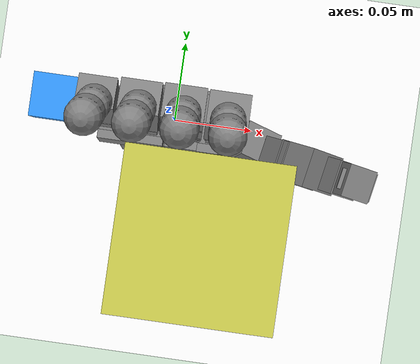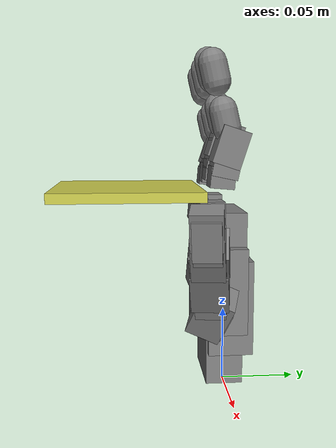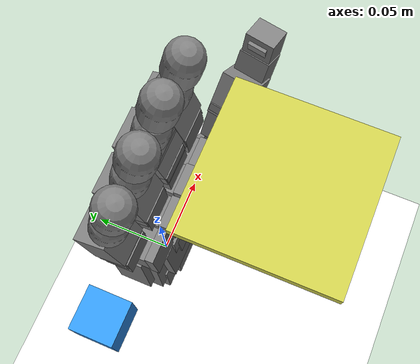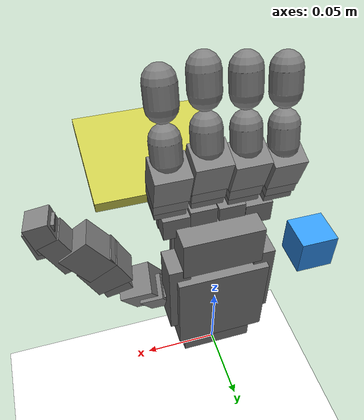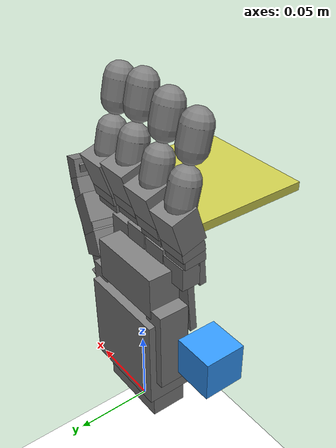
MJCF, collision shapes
<mujoco model="v2_scene_grasp_capsule_bottlepalm_cube">
  <size nconmax="80" />
  <include file="right_hand_v2_vertical_bottle_cube_eval.xml" />
  <include file="small_cube.xml" />

  <statistic center="-0.130 0 0.005" extent="0.5" meansize="0.01" />

  <visual>
    <headlight diffuse=".8 .8 .8" ambient=".2 .2 .2" specular="1 1 1" />
    <rgba force="1 0 0 1" />
    <global azimuth="120" elevation="-20" />
  </visual>

  <asset>
    <texture type="skybox" builtin="gradient" rgb1="1 1 1" rgb2="1 1 1" width="800" height="800" />
    <texture type="2d" name="groundplane" builtin="checker" mark="edge" rgb1="1 1 1" rgb2="1 1 1" markrgb="0 0 0" width="300" height="300" />
    <material name="groundplane" texture="groundplane" texuniform="true" texrepeat="5 5" reflectance="0" />
  </asset>

  <worldbody>
    <camera name="side" pos="-0.314 -0.181 0.249" xyaxes="0.5 -0.866 0 0.366 0.211 0.906" />
    <camera name="palm" pos="-0.376 0.0 0.217" xyaxes="0 -1 0 0.342 0 0.940" />
    <geom name="floor" pos="0 0 -0.25" size="0 0 0.01" type="plane" material="groundplane" contype="2" conaffinity="2" />
    <body name="cube_support" mocap="true" pos="0.025 -0.065 0.1348">
      <geom name="cube_support_geom" type="box" size="0.045 0.045 0.003" rgba="0.8 0.8 0.3 0.3" contype="4" conaffinity="0" />
    </body>
  </worldbody>

  <sensor>
    <framepos name="cube_position" objtype="body" objname="cube" />
    <framequat name="cube_orientation" objtype="body" objname="cube" />
    <framelinvel name="cube_linvel" objtype="body" objname="cube" />
    <frameangvel name="cube_angvel" objtype="body" objname="cube" />
    <framepos name="palm_position" objtype="site" objname="grasp_site" />
    <framepos name="th_tip_position" objtype="site" objname="th_tip" reftype="site" refname="grasp_site" />
    <framepos name="if_tip_position" objtype="site" objname="if_tip" reftype="site" refname="grasp_site" />
    <framepos name="mf_tip_position" objtype="site" objname="mf_tip" reftype="site" refname="grasp_site" />
    <framepos name="rf_tip_position" objtype="site" objname="rf_tip" reftype="site" refname="grasp_site" />
    <framepos name="pf_tip_position" objtype="site" objname="pf_tip" reftype="site" refname="grasp_site" />
  </sensor>

  <keyframe>
    <key
        name="home"
        qpos="0.55 0.50875 0.55 0.50875 1.3963 1.2916 1.3963 1.2916 1.38 0.22 0.33 0.025 -0.065 0.1503 1 0 0 0"
        ctrl="1.38 0.33 0.55 0.55 1.4 1.4"
        mpos="0.025 -0.065 0.1348"
        mquat="1 0 0 0"
    />
  </keyframe>
</mujoco>

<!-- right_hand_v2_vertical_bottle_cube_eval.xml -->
<mujoco model="Lingxi_Hand_V2_Right">
  <compiler angle="radian" meshdir="/home/ll/SRTP/Aero-Hand/handinformation/URDF/右/qbr/meshes/" />
  <option timestep="0.01" integrator="Euler" iterations="20" ls_iterations="20">
    <flag eulerdamp="disable" />
  </option>
  <custom>
    <numeric data="80" name="max_contact_points" />
    <numeric data="50" name="max_geom_pairs" />
  </custom>
  <asset>
    <material name="black" rgba="0.2 0.2 0.2 1" />
    <material name="gray" rgba="0.5 0.5 0.5 1" />
    <material name="white" rgba="0.529 0.549 0.549 1" />
    <material name="rubber" rgba="0.3 0.3 0.3 1" />
    <mesh name="v2_palm" file="v2_base_link.STL" />
    <mesh name="v2_thumb_base" file="link1.STL" />
    <mesh name="v2_thumb_mid" file="link2.STL" />
    <mesh name="v2_thumb_tip" file="link3.STL" />
    <mesh name="v2_index_proximal" file="link4.STL" />
    <mesh name="v2_index_distal" file="link5.STL" />
    <mesh name="v2_middle_proximal" file="link6.STL" />
    <mesh name="v2_middle_distal" file="link7.STL" />
    <mesh name="v2_ring_proximal" file="link8.STL" />
    <mesh name="v2_ring_distal" file="link9.STL" />
    <mesh name="v2_pinky_proximal" file="link10.STL" />
    <mesh name="v2_pinky_distal" file="link11.STL" />
  </asset>
  <default>
    <default class="v2_hand">
      <site group="4" />
      <default class="visual">
        <geom group="2" type="mesh" contype="0" conaffinity="0" density="0" material="white" />
      </default>
      <joint damping="0.02" armature="0.001559127" frictionloss="0.02" />
      <position kp="3.0" />
      <default class="mcp">
        <joint range="0 1.3963" damping="0.1" />
        <position ctrlrange="0 1.40" />
      </default>
      <default class="pip">
        <joint range="0 1.2915" damping="0.05" />
      </default>
      <default class="thumb_cmc">
        <joint range="0 1.3788" damping="0.1" />
        <position ctrlrange="0 1.38" />
      </default>
      <!-- 拇指 flex 代理遵循 handinformation 中的两段弯曲：
           被动段约 30°，主动段约 45°。 -->
      <default class="thumb_flex">
        <joint range="0 0.5236" damping="0.05" />
      </default>
      <default class="thumb_mcp">
        <joint range="0 0.7854" damping="0.05" />
        <position ctrlrange="0 0.79" />
      </default>
    </default>
  </default>
  <contact>
    <exclude body1="palm" body2="right_index_proximal" />
    <exclude body1="palm" body2="right_middle_proximal" />
    <exclude body1="palm" body2="right_ring_proximal" />
    <exclude body1="palm" body2="right_pinky_proximal" />
    <exclude body1="palm" body2="right_thumb_base" />
    <exclude body1="palm" body2="right_thumb_mid" />
    <exclude body1="palm" body2="right_ring_distal" />
    <exclude body1="palm" body2="right_pinky_distal" />
    <exclude body1="v2_mount" body2="right_index_proximal" />
    <exclude body1="v2_mount" body2="right_middle_proximal" />
    <exclude body1="v2_mount" body2="right_ring_proximal" />
    <exclude body1="v2_mount" body2="right_pinky_proximal" />
    <exclude body1="v2_mount" body2="right_thumb_base" />
    <exclude body1="right_index_proximal" body2="right_index_distal" />
    <exclude body1="right_middle_proximal" body2="right_middle_distal" />
    <exclude body1="right_ring_proximal" body2="right_ring_distal" />
    <exclude body1="right_pinky_proximal" body2="right_pinky_distal" />
    <exclude body1="right_thumb_base" body2="right_thumb_mid" />
    <exclude body1="right_thumb_mid" body2="right_thumb_tip" />
    <exclude body1="right_index_proximal" body2="right_middle_proximal" />
    <exclude body1="right_index_distal" body2="right_middle_distal" />
    <exclude body1="right_middle_proximal" body2="right_ring_proximal" />
    <exclude body1="right_middle_distal" body2="right_ring_distal" />
    <exclude body1="right_ring_proximal" body2="right_pinky_proximal" />
    <exclude body1="right_ring_distal" body2="right_pinky_distal" />
    <exclude body1="right_index_proximal" body2="right_middle_distal" />
    <exclude body1="right_middle_proximal" body2="right_ring_distal" />
    <exclude body1="right_ring_proximal" body2="right_pinky_distal" />
    <exclude body1="right_middle_proximal" body2="right_index_distal" />
    <exclude body1="right_ring_proximal" body2="right_middle_distal" />
    <exclude body1="right_pinky_proximal" body2="right_ring_distal" />
  </contact>
  <worldbody>
    <body name="v2_mount" pos="0 0 0" euler="1.5708 0 0" childclass="v2_hand">
      <body name="palm" pos="0 0 0">
        <geom type="mesh" mesh="v2_palm" class="visual" />
        <geom name="palm_capsule_000" type="box" size="0.0300 0.0310 0.0145" pos="0.0000 0.0580 -0.0010" group="3" friction="1.95 0.014 0.0002" solref="0.008 1.1" solimp="0.95 0.995 0.0005" />
        <geom name="palm_capsule_001" type="box" size="0.0260 0.0140 0.0105" pos="0.0000 0.1060 -0.0010" group="3" friction="1.95 0.014 0.0002" solref="0.008 1.1" solimp="0.95 0.995 0.0005" />
        <geom name="palm_capsule_002" type="box" size="0.0245 0.0170 0.0120" pos="0.0000 0.0230 0.0025" group="3" friction="1.90 0.014 0.0002" solref="0.008 1.1" solimp="0.95 0.995 0.0005" />
        <geom name="palm_capsule_003" type="box" size="0.0070 0.0280 0.0100" pos="0.0280 0.0700 -0.0010" group="3" friction="1.95 0.014 0.0002" solref="0.008 1.1" solimp="0.95 0.995 0.0005" />
        <geom name="palm_capsule_004" type="box" size="0.0070 0.0280 0.0100" pos="-0.0280 0.0700 -0.0010" group="3" friction="1.95 0.014 0.0002" solref="0.008 1.1" solimp="0.95 0.995 0.0005" />
        <geom name="palm_capsule_005" type="box" size="0.0185 0.0330 0.0018" pos="0.0000 0.0715 0.0198" group="3" friction="2.80 0.020 0.0002" solref="0.008 1.1" solimp="0.95 0.995 0.0005" />
        <geom name="palm_capsule_006" type="box" group="3" friction="2.50 0.018 0.0002" solref="0.008 1.1" solimp="0.95 0.995 0.0005" pos="0.0145 0.0835 0.0195" quat="0.999048 -0.043619 0 0" size="0.0115 0.0175 0.0024" />
        <geom name="palm_capsule_007" type="box" group="3" friction="2.50 0.018 0.0002" solref="0.008 1.1" solimp="0.95 0.995 0.0005" pos="-0.0145 0.0835 0.0195" quat="0.999048 -0.043619 0 0" size="0.0115 0.0175 0.0024" />
        <geom name="palm_capsule_008" type="box" group="3" friction="2.45 0.017 0.0002" solref="0.008 1.1" solimp="0.95 0.995 0.0005" pos="0.0000 0.0980 0.0190" quat="0.999048 -0.043619 0 0" size="0.0145 0.0185 0.0024" />
        <geom name="palm_capsule_009" type="box" size="0.0085 0.0075 0.0062" pos="0.0255 0.1205 0.0102" group="3" friction="2.10 0.015 0.0002" solref="0.008 1.1" solimp="0.95 0.995 0.0005" />
        <geom name="palm_capsule_010" type="box" group="3" friction="2.35 0.016 0.0002" solref="0.008 1.1" solimp="0.95 0.995 0.0005" pos="0.0255 0.1210 0.0182" quat="0.999048 -0.043619 0 0" size="0.0086 0.0100 0.0023" />
        <geom name="palm_capsule_011" type="box" size="0.0084 0.0080 0.0063" pos="0.0085 0.1230 0.0100" group="3" friction="2.10 0.015 0.0002" solref="0.008 1.1" solimp="0.95 0.995 0.0005" />
        <geom name="palm_capsule_012" type="box" group="3" friction="2.35 0.016 0.0002" solref="0.008 1.1" solimp="0.95 0.995 0.0005" pos="0.0085 0.1235 0.0180" quat="0.999048 -0.043619 0 0" size="0.0085 0.0105 0.0023" />
        <geom name="palm_capsule_013" type="box" size="0.0084 0.0080 0.0063" pos="-0.0095 0.1215 0.0100" group="3" friction="2.10 0.015 0.0002" solref="0.008 1.1" solimp="0.95 0.995 0.0005" />
        <geom name="palm_capsule_014" type="box" group="3" friction="2.35 0.016 0.0002" solref="0.008 1.1" solimp="0.95 0.995 0.0005" pos="-0.0095 0.1220 0.0180" quat="0.999048 -0.043619 0 0" size="0.0085 0.0105 0.0023" />
        <geom name="palm_capsule_015" type="box" size="0.0088 0.0075 0.0062" pos="-0.0270 0.1190 0.0102" group="3" friction="2.10 0.015 0.0002" solref="0.008 1.1" solimp="0.95 0.995 0.0005" />
        <geom name="palm_capsule_016" type="box" group="3" friction="2.35 0.016 0.0002" solref="0.008 1.1" solimp="0.95 0.995 0.0005" pos="-0.0270 0.1195 0.0182" quat="0.999048 -0.043619 0 0" size="0.0088 0.0100 0.0023" />
        <site name="grasp_site" pos="0 0.085 -0.020" group="4" />
        <body name="right_index_proximal" pos="0.034276 0.1374 0.001">
          <inertial pos="-0.003657 0.0162 0.000274" mass="0.0686" diaginertia="7.49e-06 7.33e-06 2.82e-06" />
          <joint name="right_index_mcp" axis="1 0 0" class="mcp" />
          <geom type="mesh" mesh="v2_index_proximal" class="visual" />
          <geom name="right_index_proximal_capsule_000" type="box" group="3" friction="1.5" solref="0.005 1.0" solimp="0.97 0.999 0.0001" pos="-0.003700 0.006000 0.005400" quat="0.999048 -0.043619 0 0" size="0.009400 0.006600 0.007600" />
          <geom name="right_index_proximal_capsule_001" type="box" group="3" friction="1.5" solref="0.005 1.0" solimp="0.97 0.999 0.0001" pos="-0.003950 0.024400 0.000200" quat="0.987688 -0.156434 0 0" size="0.010400 0.011800 0.008900" />
          <geom name="right_index_proximal_capsule_002" type="box" group="3" friction="1.5" solref="0.005 1.0" solimp="0.97 0.999 0.0001" pos="-0.003650 0.015400 0.002700" quat="0.994522 -0.104528 0 0" size="0.010000 0.009600 0.008300" />
          <body name="right_index_distal" pos="0.00084336 0.031988 -0.0026473">
            <inertial pos="-0.00450 0.0246 0.00927" mass="0.0755" diaginertia="1.58e-05 1.57e-05 2.47e-06" />
            <joint name="right_index_pip" axis="1 0 0" class="pip" />
            <geom type="mesh" mesh="v2_index_distal" class="visual" />
            <geom name="right_index_distal_capsule_000" type="capsule" group="3" friction="1.5" solref="0.005 1.0" solimp="0.97 0.999 0.0001" fromto="-0.004533 0.003643 0.004505 -0.004547 0.015148 0.007211" size="0.008789" />
            <geom name="right_index_distal_capsule_001" type="capsule" group="3" friction="1.5" solref="0.005 1.0" solimp="0.97 0.999 0.0001" fromto="-0.004569 0.032374 0.011263 -0.004584 0.043669 0.013920" size="0.008894" />
            <site name="if_tip" pos="-0.004 0.052 0.005" group="4" />
            <site name="if_tip_t00" pos="-0.007 0.042 0.005" size="0.003" />
            <site name="if_tip_t01" pos="-0.005 0.042 0.005" size="0.003" />
            <site name="if_tip_t02" pos="-0.003 0.042 0.005" size="0.003" />
            <site name="if_tip_t03" pos="-0.001 0.042 0.005" size="0.003" />
            <site name="if_tip_t04" pos="-0.007 0.045 0.005" size="0.003" />
            <site name="if_tip_t05" pos="-0.005 0.045 0.005" size="0.003" />
            <site name="if_tip_t06" pos="-0.003 0.045 0.005" size="0.003" />
            <site name="if_tip_t07" pos="-0.001 0.045 0.005" size="0.003" />
            <site name="if_tip_t08" pos="-0.007 0.048 0.005" size="0.003" />
            <site name="if_tip_t09" pos="-0.005 0.048 0.005" size="0.003" />
            <site name="if_tip_t10" pos="-0.003 0.048 0.005" size="0.003" />
            <site name="if_tip_t11" pos="-0.001 0.048 0.005" size="0.003" />
            <site name="if_tip_t12" pos="-0.007 0.051 0.005" size="0.003" />
            <site name="if_tip_t13" pos="-0.005 0.051 0.005" size="0.003" />
            <site name="if_tip_t14" pos="-0.003 0.051 0.005" size="0.003" />
            <site name="if_tip_t15" pos="-0.001 0.051 0.005" size="0.003" />
          </body>
        </body>
        <body name="right_middle_proximal" pos="0.012276 0.14055 0.001">
          <inertial pos="-0.003657 0.0162 0.000274" mass="0.0686" diaginertia="7.49e-06 7.33e-06 2.82e-06" />
          <joint name="right_middle_mcp" axis="1 0 0" class="mcp" />
          <geom type="mesh" mesh="v2_middle_proximal" class="visual" />
          <geom name="right_middle_proximal_capsule_000" type="box" group="3" friction="1.5" solref="0.005 1.0" solimp="0.97 0.999 0.0001" pos="-0.003700 0.006100 0.005500" quat="0.999048 -0.043619 0 0" size="0.009600 0.006800 0.007800" />
          <geom name="right_middle_proximal_capsule_001" type="box" group="3" friction="1.5" solref="0.005 1.0" solimp="0.97 0.999 0.0001" pos="-0.003950 0.024600 0.000300" quat="0.987688 -0.156434 0 0" size="0.010500 0.012000 0.009000" />
          <geom name="right_middle_proximal_capsule_002" type="box" group="3" friction="1.5" solref="0.005 1.0" solimp="0.97 0.999 0.0001" pos="-0.003650 0.015600 0.002900" quat="0.994522 -0.104528 0 0" size="0.010100 0.009900 0.008500" />
          <body name="right_middle_distal" pos="0 0.02968 -0.0024563">
            <inertial pos="-0.00366 0.0269 0.00908" mass="0.0755" diaginertia="1.58e-05 1.57e-05 2.47e-06" />
            <joint name="right_middle_pip" axis="1 0 0" class="pip" />
            <geom type="mesh" mesh="v2_middle_distal" class="visual" />
            <geom name="right_middle_distal_capsule_000" type="capsule" group="3" friction="1.5" solref="0.005 1.0" solimp="0.97 0.999 0.0001" fromto="-0.003689 0.005951 0.004314 -0.003704 0.017455 0.007020" size="0.008789" />
            <geom name="right_middle_distal_capsule_001" type="capsule" group="3" friction="1.5" solref="0.005 1.0" solimp="0.97 0.999 0.0001" fromto="-0.003726 0.034682 0.011072 -0.003740 0.045977 0.013729" size="0.008894" />
            <site name="mf_tip" pos="-0.004 0.052 0.005" group="4" />
            <site name="mf_tip_t00" pos="-0.007 0.042 0.005" size="0.003" />
            <site name="mf_tip_t01" pos="-0.005 0.042 0.005" size="0.003" />
            <site name="mf_tip_t02" pos="-0.003 0.042 0.005" size="0.003" />
            <site name="mf_tip_t03" pos="-0.001 0.042 0.005" size="0.003" />
            <site name="mf_tip_t04" pos="-0.007 0.045 0.005" size="0.003" />
            <site name="mf_tip_t05" pos="-0.005 0.045 0.005" size="0.003" />
            <site name="mf_tip_t06" pos="-0.003 0.045 0.005" size="0.003" />
            <site name="mf_tip_t07" pos="-0.001 0.045 0.005" size="0.003" />
            <site name="mf_tip_t08" pos="-0.007 0.048 0.005" size="0.003" />
            <site name="mf_tip_t09" pos="-0.005 0.048 0.005" size="0.003" />
            <site name="mf_tip_t10" pos="-0.003 0.048 0.005" size="0.003" />
            <site name="mf_tip_t11" pos="-0.001 0.048 0.005" size="0.003" />
            <site name="mf_tip_t12" pos="-0.007 0.051 0.005" size="0.003" />
            <site name="mf_tip_t13" pos="-0.005 0.051 0.005" size="0.003" />
            <site name="mf_tip_t14" pos="-0.003 0.051 0.005" size="0.003" />
            <site name="mf_tip_t15" pos="-0.001 0.051 0.005" size="0.003" />
          </body>
        </body>
        <body name="right_ring_proximal" pos="-0.009724 0.1374 0.001">
          <inertial pos="-0.003657 0.0162 0.000274" mass="0.0686" diaginertia="7.49e-06 7.33e-06 2.82e-06" />
          <joint name="right_ring_mcp" axis="1 0 0" class="mcp" />
          <geom type="mesh" mesh="v2_ring_proximal" class="visual" />
          <geom name="right_ring_proximal_capsule_000" type="box" group="3" friction="1.5" solref="0.005 1.0" solimp="0.97 0.999 0.0001" pos="-0.003700 0.006000 0.005300" quat="0.999048 -0.043619 0 0" size="0.009300 0.006500 0.007500" />
          <geom name="right_ring_proximal_capsule_001" type="box" group="3" friction="1.5" solref="0.005 1.0" solimp="0.97 0.999 0.0001" pos="-0.003950 0.024300 0.000150" quat="0.987688 -0.156434 0 0" size="0.010300 0.011700 0.008800" />
          <geom name="right_ring_proximal_capsule_002" type="box" group="3" friction="1.5" solref="0.005 1.0" solimp="0.97 0.999 0.0001" pos="-0.003650 0.015200 0.002600" quat="0.994522 -0.104528 0 0" size="0.009900 0.009500 0.008200" />
          <body name="right_ring_distal" pos="0 0.02968 -0.0024563">
            <inertial pos="-0.00366 0.0269 0.00908" mass="0.0755" diaginertia="1.58e-05 1.57e-05 2.47e-06" />
            <joint name="right_ring_pip" axis="1 0 0" class="pip" />
            <geom type="mesh" mesh="v2_ring_distal" class="visual" />
            <geom name="right_ring_distal_capsule_000" type="capsule" group="3" friction="1.5" solref="0.005 1.0" solimp="0.97 0.999 0.0001" fromto="-0.003689 0.005951 0.004314 -0.003704 0.017455 0.007020" size="0.008789" />
            <geom name="right_ring_distal_capsule_001" type="capsule" group="3" friction="1.5" solref="0.005 1.0" solimp="0.97 0.999 0.0001" fromto="-0.003726 0.034682 0.011072 -0.003740 0.045977 0.013729" size="0.008894" />
            <site name="rf_tip" pos="-0.004 0.052 0.005" group="4" />
            <site name="rf_tip_t00" pos="-0.007 0.042 0.005" size="0.003" />
            <site name="rf_tip_t01" pos="-0.005 0.042 0.005" size="0.003" />
            <site name="rf_tip_t02" pos="-0.003 0.042 0.005" size="0.003" />
            <site name="rf_tip_t03" pos="-0.001 0.042 0.005" size="0.003" />
            <site name="rf_tip_t04" pos="-0.007 0.045 0.005" size="0.003" />
            <site name="rf_tip_t05" pos="-0.005 0.045 0.005" size="0.003" />
            <site name="rf_tip_t06" pos="-0.003 0.045 0.005" size="0.003" />
            <site name="rf_tip_t07" pos="-0.001 0.045 0.005" size="0.003" />
            <site name="rf_tip_t08" pos="-0.007 0.048 0.005" size="0.003" />
            <site name="rf_tip_t09" pos="-0.005 0.048 0.005" size="0.003" />
            <site name="rf_tip_t10" pos="-0.003 0.048 0.005" size="0.003" />
            <site name="rf_tip_t11" pos="-0.001 0.048 0.005" size="0.003" />
            <site name="rf_tip_t12" pos="-0.007 0.051 0.005" size="0.003" />
            <site name="rf_tip_t13" pos="-0.005 0.051 0.005" size="0.003" />
            <site name="rf_tip_t14" pos="-0.003 0.051 0.005" size="0.003" />
            <site name="rf_tip_t15" pos="-0.001 0.051 0.005" size="0.003" />
          </body>
        </body>
        <body name="right_pinky_proximal" pos="-0.031724 0.13417 0.001">
          <inertial pos="-0.003657 0.0162 0.000274" mass="0.0686" diaginertia="7.49e-06 7.33e-06 2.82e-06" />
          <joint name="right_pinky_mcp" axis="1 0 0" class="mcp" />
          <geom type="mesh" mesh="v2_pinky_proximal" class="visual" />
          <geom name="right_pinky_proximal_capsule_000" type="box" group="3" friction="1.5" solref="0.005 1.0" solimp="0.97 0.999 0.0001" pos="-0.003550 0.005700 0.005000" quat="0.999048 -0.043619 0 0" size="0.008700 0.006100 0.007100" />
          <geom name="right_pinky_proximal_capsule_001" type="box" group="3" friction="1.5" solref="0.005 1.0" solimp="0.97 0.999 0.0001" pos="-0.003850 0.023500 0.000000" quat="0.987688 -0.156434 0 0" size="0.009700 0.011000 0.008300" />
          <geom name="right_pinky_proximal_capsule_002" type="box" group="3" friction="1.5" solref="0.005 1.0" solimp="0.97 0.999 0.0001" pos="-0.003650 0.014700 0.002400" quat="0.994522 -0.104528 0 0" size="0.009200 0.008900 0.007700" />
          <body name="right_pinky_distal" pos="0.00084336 0.031988 -0.0026473">
            <inertial pos="-0.00450 0.0246 0.00927" mass="0.0755" diaginertia="1.58e-05 1.57e-05 2.47e-06" />
            <joint name="right_pinky_pip" axis="1 0 0" class="pip" />
            <geom type="mesh" mesh="v2_pinky_distal" class="visual" />
            <geom name="right_pinky_distal_capsule_000" type="capsule" group="3" friction="1.5" solref="0.005 1.0" solimp="0.97 0.999 0.0001" fromto="-0.004533 0.003643 0.004505 -0.004547 0.015148 0.007211" size="0.008789" />
            <geom name="right_pinky_distal_capsule_001" type="capsule" group="3" friction="1.5" solref="0.005 1.0" solimp="0.97 0.999 0.0001" fromto="-0.004569 0.032374 0.011263 -0.004584 0.043669 0.013920" size="0.008894" />
            <site name="pf_tip" pos="-0.004 0.052 0.005" group="4" />
            <site name="pf_tip_t00" pos="-0.007 0.042 0.005" size="0.003" />
            <site name="pf_tip_t01" pos="-0.005 0.042 0.005" size="0.003" />
            <site name="pf_tip_t02" pos="-0.003 0.042 0.005" size="0.003" />
            <site name="pf_tip_t03" pos="-0.001 0.042 0.005" size="0.003" />
            <site name="pf_tip_t04" pos="-0.007 0.045 0.005" size="0.003" />
            <site name="pf_tip_t05" pos="-0.005 0.045 0.005" size="0.003" />
            <site name="pf_tip_t06" pos="-0.003 0.045 0.005" size="0.003" />
            <site name="pf_tip_t07" pos="-0.001 0.045 0.005" size="0.003" />
            <site name="pf_tip_t08" pos="-0.007 0.048 0.005" size="0.003" />
            <site name="pf_tip_t09" pos="-0.005 0.048 0.005" size="0.003" />
            <site name="pf_tip_t10" pos="-0.003 0.048 0.005" size="0.003" />
            <site name="pf_tip_t11" pos="-0.001 0.048 0.005" size="0.003" />
            <site name="pf_tip_t12" pos="-0.007 0.051 0.005" size="0.003" />
            <site name="pf_tip_t13" pos="-0.005 0.051 0.005" size="0.003" />
            <site name="pf_tip_t14" pos="-0.003 0.051 0.005" size="0.003" />
            <site name="pf_tip_t15" pos="-0.001 0.051 0.005" size="0.003" />
          </body>
        </body>
        <body name="right_thumb_base" pos="0.028693 0.069894 0.010325" quat="0.999048 0 0 0.043619">
          <inertial pos="0.013775 -0.009814 0.002084" mass="0.08488" diaginertia="1.03e-05 9.49e-06 5.67e-06" />
          <joint name="right_thumb_cmc_abd" axis="0 -1 0" class="thumb_cmc" />
          <geom type="mesh" mesh="v2_thumb_base" class="visual" />
          <!-- Keep only the thumb-base box scaffold that actually contributes to
               opposition support; avoid extra palm-connection ellipsoids. -->
          <geom name="right_thumb_base_capsule_000" type="box" size="0.011200 0.010800 0.013800" pos="0.018600 -0.008900 0.003600" quat="0.237188 0.108156 0.803420 0.535313" group="3" friction="1.6" solref="0.005 1.0" solimp="0.97 0.999 0.0001" />
          <geom name="right_thumb_base_capsule_001" type="box" size="0.008200 0.008800 0.010600" pos="0.009800 -0.014200 0.000400" quat="0.237188 0.108156 0.803420 0.535313" group="3" friction="1.6" solref="0.005 1.0" solimp="0.97 0.999 0.0001" />
          <geom name="right_thumb_base_capsule_002" type="box" size="0.006400 0.007000 0.007600" pos="-0.001800 -0.008600 -0.003600" quat="0.237188 0.108156 0.803420 0.535313" group="3" friction="1.6" solref="0.005 1.0" solimp="0.97 0.999 0.0001" />
          <body name="right_thumb_mid" pos="0.02679 -0.0045 0.0045976" quat="0.641137 -0.027549 -0.766225 -0.032924">
            <inertial pos="0 0.01832 -0.01287" mass="0.18907" diaginertia="4.62e-05 4.25e-05 1.60e-05" />
            <joint name="right_thumb_cmc_flex" axis="1 0 0" class="thumb_flex" />
            <geom type="mesh" mesh="v2_thumb_mid" class="visual" />
            <geom name="right_thumb_mid_capsule_bridge" type="box" group="3" friction="1.62" solref="0.005 1.0" solimp="0.97 0.999 0.0001" pos="0.000300 0.010200 -0.010900" quat="0.981627 -0.190809 0 0" size="0.009000 0.011000 0.009600" />
            <geom name="right_thumb_mid_capsule_000" type="box" group="3" friction="1.60" solref="0.005 1.0" solimp="0.97 0.999 0.0001" pos="0.000300 0.018800 -0.014800" quat="0.970296 -0.241922 0 0" size="0.010800 0.012200 0.012800" />
            <geom name="right_thumb_mid_capsule_001" type="box" group="3" friction="1.60" solref="0.005 1.0" solimp="0.97 0.999 0.0001" pos="-0.000100 0.033500 -0.023400" quat="0.945519 -0.325568 0 0" size="0.010800 0.013200 0.011600" />
            <body name="right_thumb_tip" pos="0.0055478 0.0413 -0.024172">
              <inertial pos="-0.005551 0.005391 -0.014448" mass="0.07660" diaginertia="8.30e-06 8.00e-06 4.06e-06" />
              <joint name="right_thumb_mcp" axis="1 0 0" class="thumb_mcp" />
              <geom type="mesh" mesh="v2_thumb_tip" class="visual" />
              <geom name="right_thumb_tip_capsule_000" type="box" group="3" friction="1.6" solref="0.005 1.0" solimp="0.97 0.999 0.0001" pos="-0.005550 0.013200 -0.022400" quat="0.991445 -0.130526 0 0" size="0.008800 0.010500 0.007800" />
              <geom name="right_thumb_tip_capsule_001" type="box" group="3" friction="1.66" solref="0.005 1.0" solimp="0.97 0.999 0.0001" pos="-0.005450 -0.001800 -0.014000" quat="0.970296 -0.241922 0 0" size="0.009400 0.013400 0.007800" />
              <geom name="right_thumb_tip_capsule_002" type="box" group="3" friction="1.6" solref="0.005 1.0" solimp="0.97 0.999 0.0001" pos="-0.005550 0.017500 -0.019600" quat="0.999048 0.043619 0 0" size="0.005600 0.004800 0.004600" />
              <geom name="right_thumb_tip_capsule_003" type="box" group="3" friction="1.7" solref="0.005 1.0" solimp="0.97 0.999 0.0001" pos="-0.005650 0.008000 -0.026200" quat="0.994522 -0.104528 0 0" size="0.007800 0.010800 0.005400" />
              <geom name="right_thumb_tip_capsule_004" type="box" group="3" friction="1.68" solref="0.005 1.0" solimp="0.97 0.999 0.0001" pos="-0.005500 0.004000 -0.018600" quat="0.978148 -0.207912 0 0" size="0.007800 0.010000 0.006400" />
              <site name="th_tip" pos="-0.006 0.021 -0.020" group="4" />
              <site name="th_tip_t00" pos="-0.010 0.008 -0.020" size="0.003" />
              <site name="th_tip_t01" pos="-0.007 0.008 -0.020" size="0.003" />
              <site name="th_tip_t02" pos="-0.004 0.008 -0.020" size="0.003" />
              <site name="th_tip_t03" pos="-0.001 0.008 -0.020" size="0.003" />
              <site name="th_tip_t04" pos="-0.010 0.012 -0.020" size="0.003" />
              <site name="th_tip_t05" pos="-0.007 0.012 -0.020" size="0.003" />
              <site name="th_tip_t06" pos="-0.004 0.012 -0.020" size="0.003" />
              <site name="th_tip_t07" pos="-0.001 0.012 -0.020" size="0.003" />
              <site name="th_tip_t08" pos="-0.010 0.016 -0.020" size="0.003" />
              <site name="th_tip_t09" pos="-0.007 0.016 -0.020" size="0.003" />
              <site name="th_tip_t10" pos="-0.004 0.016 -0.020" size="0.003" />
              <site name="th_tip_t11" pos="-0.001 0.016 -0.020" size="0.003" />
              <site name="th_tip_t12" pos="-0.010 0.020 -0.020" size="0.003" />
              <site name="th_tip_t13" pos="-0.007 0.020 -0.020" size="0.003" />
              <site name="th_tip_t14" pos="-0.004 0.020 -0.020" size="0.003" />
              <site name="th_tip_t15" pos="-0.001 0.020 -0.020" size="0.003" />
            </body>
          </body>
        </body>
      </body>
    </body>
  </worldbody>
  <actuator>
    <position name="hw_thumb_rot" joint="right_thumb_cmc_abd" class="thumb_cmc" kp="5" />
    <position name="hw_thumb_flex" joint="right_thumb_mcp" class="thumb_mcp" kp="3" />
    <position name="hw_index" joint="right_index_mcp" class="mcp" kp="3" />
    <position name="hw_middle" joint="right_middle_mcp" class="mcp" kp="3" />
    <position name="hw_ring" joint="right_ring_mcp" class="mcp" kp="3" />
    <position name="hw_pinky" joint="right_pinky_mcp" class="mcp" kp="3" />
  </actuator>
  <sensor>
    <jointpos name="hw_pos_thumb_rot" joint="right_thumb_cmc_abd" />
    <jointpos name="hw_pos_thumb_flex" joint="right_thumb_mcp" />
    <jointpos name="hw_pos_index" joint="right_index_mcp" />
    <jointpos name="hw_pos_middle" joint="right_middle_mcp" />
    <jointpos name="hw_pos_ring" joint="right_ring_mcp" />
    <jointpos name="hw_pos_pinky" joint="right_pinky_mcp" />
    <touch name="hw_tip_frc_thumb_00" site="th_tip_t00" />
    <touch name="hw_tip_frc_thumb_01" site="th_tip_t01" />
    <touch name="hw_tip_frc_thumb_02" site="th_tip_t02" />
    <touch name="hw_tip_frc_thumb_03" site="th_tip_t03" />
    <touch name="hw_tip_frc_thumb_04" site="th_tip_t04" />
    <touch name="hw_tip_frc_thumb_05" site="th_tip_t05" />
    <touch name="hw_tip_frc_thumb_06" site="th_tip_t06" />
    <touch name="hw_tip_frc_thumb_07" site="th_tip_t07" />
    <touch name="hw_tip_frc_thumb_08" site="th_tip_t08" />
    <touch name="hw_tip_frc_thumb_09" site="th_tip_t09" />
    <touch name="hw_tip_frc_thumb_10" site="th_tip_t10" />
    <touch name="hw_tip_frc_thumb_11" site="th_tip_t11" />
    <touch name="hw_tip_frc_thumb_12" site="th_tip_t12" />
    <touch name="hw_tip_frc_thumb_13" site="th_tip_t13" />
    <touch name="hw_tip_frc_thumb_14" site="th_tip_t14" />
    <touch name="hw_tip_frc_thumb_15" site="th_tip_t15" />
    <touch name="hw_tip_frc_index_00" site="if_tip_t00" />
    <touch name="hw_tip_frc_index_01" site="if_tip_t01" />
    <touch name="hw_tip_frc_index_02" site="if_tip_t02" />
    <touch name="hw_tip_frc_index_03" site="if_tip_t03" />
    <touch name="hw_tip_frc_index_04" site="if_tip_t04" />
    <touch name="hw_tip_frc_index_05" site="if_tip_t05" />
    <touch name="hw_tip_frc_index_06" site="if_tip_t06" />
    <touch name="hw_tip_frc_index_07" site="if_tip_t07" />
    <touch name="hw_tip_frc_index_08" site="if_tip_t08" />
    <touch name="hw_tip_frc_index_09" site="if_tip_t09" />
    <touch name="hw_tip_frc_index_10" site="if_tip_t10" />
    <touch name="hw_tip_frc_index_11" site="if_tip_t11" />
    <touch name="hw_tip_frc_index_12" site="if_tip_t12" />
    <touch name="hw_tip_frc_index_13" site="if_tip_t13" />
    <touch name="hw_tip_frc_index_14" site="if_tip_t14" />
    <touch name="hw_tip_frc_index_15" site="if_tip_t15" />
    <touch name="hw_tip_frc_middle_00" site="mf_tip_t00" />
    <touch name="hw_tip_frc_middle_01" site="mf_tip_t01" />
    <touch name="hw_tip_frc_middle_02" site="mf_tip_t02" />
    <touch name="hw_tip_frc_middle_03" site="mf_tip_t03" />
    <touch name="hw_tip_frc_middle_04" site="mf_tip_t04" />
    <touch name="hw_tip_frc_middle_05" site="mf_tip_t05" />
    <touch name="hw_tip_frc_middle_06" site="mf_tip_t06" />
    <touch name="hw_tip_frc_middle_07" site="mf_tip_t07" />
    <touch name="hw_tip_frc_middle_08" site="mf_tip_t08" />
    <touch name="hw_tip_frc_middle_09" site="mf_tip_t09" />
    <touch name="hw_tip_frc_middle_10" site="mf_tip_t10" />
    <touch name="hw_tip_frc_middle_11" site="mf_tip_t11" />
    <touch name="hw_tip_frc_middle_12" site="mf_tip_t12" />
    <touch name="hw_tip_frc_middle_13" site="mf_tip_t13" />
    <touch name="hw_tip_frc_middle_14" site="mf_tip_t14" />
    <touch name="hw_tip_frc_middle_15" site="mf_tip_t15" />
    <touch name="hw_tip_frc_ring_00" site="rf_tip_t00" />
    <touch name="hw_tip_frc_ring_01" site="rf_tip_t01" />
    <touch name="hw_tip_frc_ring_02" site="rf_tip_t02" />
    <touch name="hw_tip_frc_ring_03" site="rf_tip_t03" />
    <touch name="hw_tip_frc_ring_04" site="rf_tip_t04" />
    <touch name="hw_tip_frc_ring_05" site="rf_tip_t05" />
    <touch name="hw_tip_frc_ring_06" site="rf_tip_t06" />
    <touch name="hw_tip_frc_ring_07" site="rf_tip_t07" />
    <touch name="hw_tip_frc_ring_08" site="rf_tip_t08" />
    <touch name="hw_tip_frc_ring_09" site="rf_tip_t09" />
    <touch name="hw_tip_frc_ring_10" site="rf_tip_t10" />
    <touch name="hw_tip_frc_ring_11" site="rf_tip_t11" />
    <touch name="hw_tip_frc_ring_12" site="rf_tip_t12" />
    <touch name="hw_tip_frc_ring_13" site="rf_tip_t13" />
    <touch name="hw_tip_frc_ring_14" site="rf_tip_t14" />
    <touch name="hw_tip_frc_ring_15" site="rf_tip_t15" />
    <touch name="hw_tip_frc_pinky_00" site="pf_tip_t00" />
    <touch name="hw_tip_frc_pinky_01" site="pf_tip_t01" />
    <touch name="hw_tip_frc_pinky_02" site="pf_tip_t02" />
    <touch name="hw_tip_frc_pinky_03" site="pf_tip_t03" />
    <touch name="hw_tip_frc_pinky_04" site="pf_tip_t04" />
    <touch name="hw_tip_frc_pinky_05" site="pf_tip_t05" />
    <touch name="hw_tip_frc_pinky_06" site="pf_tip_t06" />
    <touch name="hw_tip_frc_pinky_07" site="pf_tip_t07" />
    <touch name="hw_tip_frc_pinky_08" site="pf_tip_t08" />
    <touch name="hw_tip_frc_pinky_09" site="pf_tip_t09" />
    <touch name="hw_tip_frc_pinky_10" site="pf_tip_t10" />
    <touch name="hw_tip_frc_pinky_11" site="pf_tip_t11" />
    <touch name="hw_tip_frc_pinky_12" site="pf_tip_t12" />
    <touch name="hw_tip_frc_pinky_13" site="pf_tip_t13" />
    <touch name="hw_tip_frc_pinky_14" site="pf_tip_t14" />
    <touch name="hw_tip_frc_pinky_15" site="pf_tip_t15" />
  </sensor>
  <equality>
    <joint joint1="right_index_pip" joint2="right_index_mcp" polycoef="0 0.925 0 0 0" solref="0.005 1" solimp="0.95 0.99 0.001" />
    <joint joint1="right_middle_pip" joint2="right_middle_mcp" polycoef="0 0.925 0 0 0" solref="0.005 1" solimp="0.95 0.99 0.001" />
    <joint joint1="right_ring_pip" joint2="right_ring_mcp" polycoef="0 0.925 0 0 0" solref="0.005 1" solimp="0.95 0.99 0.001" />
    <joint joint1="right_pinky_pip" joint2="right_pinky_mcp" polycoef="0 0.925 0 0 0" solref="0.005 1" solimp="0.95 0.99 0.001" />
    <!-- handinformation / qbr URDF / HW6 tendon model 都指向：
         thumb_flex 通道主要驱动 thumb_mcp，cmc_flex 是联动的被动段。
         这里用 30° / 45° ≈ 0.667 的线性代理，替代旧的 abd→flex 训练近似。 -->
    <joint joint1="right_thumb_cmc_flex" joint2="right_thumb_mcp" polycoef="0 0.6666667 0 0 0" solref="0.005 1" solimp="0.95 0.99 0.001" />
  </equality>
</mujoco>

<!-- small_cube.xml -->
<mujoco>
  <!-- ================================================================
       物块参数文件（P-stage 和 V-stage 共用）
       ================================================================ -->
  <default>
    <default class="cube">
      <!-- C14: friction 2.0→1.5 (moderate), mass 20g→10g (easier hold) -->
      <!-- C20穿模修复: 添加solref/solimp使方块接触更硬 -->
      <geom friction="1.5 0.05" conaffinity="7" condim="3" solref="0.005 1.0" solimp="0.97 0.999 0.0001"/>
    </default>
  </default>

  <worldbody>
    <!-- 【物块 body】
         pos：默认初始位置（被 keyframe 或 Python config 中 cube_pos 覆盖，此值不生效）
         quat：初始姿态，1 0 0 0 = 无旋转 -->
    <body name="cube" pos="-0.066 0.0 0.085" quat="1 0 0 0" childclass="cube">
      <!-- freejoint：使物块有 6-DOF 自由运动（位置+姿态，共 7 qpos）-->
      <freejoint name="cube_freejoint"/>
      <geom name="cube" type="box" size=".0125 .0125 .0125" mass=".020" group="1" rgba="0.2 0.6 1.0 1"/>
      <site name="cube_center" pos="0 0 0" group="4"/>
    </body>
  </worldbody>
</mujoco>
